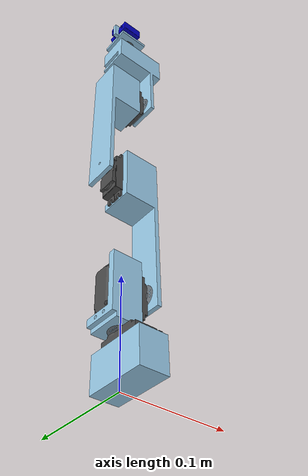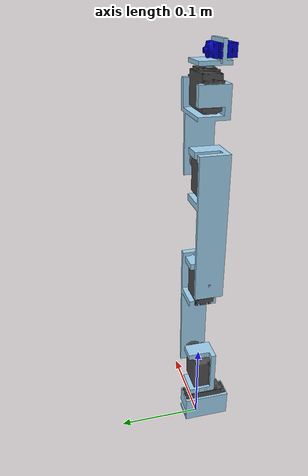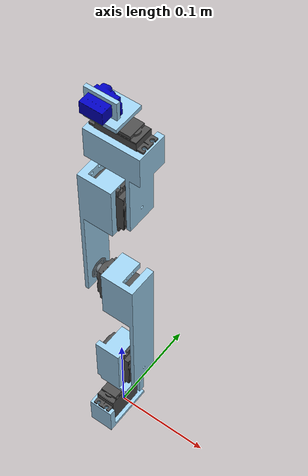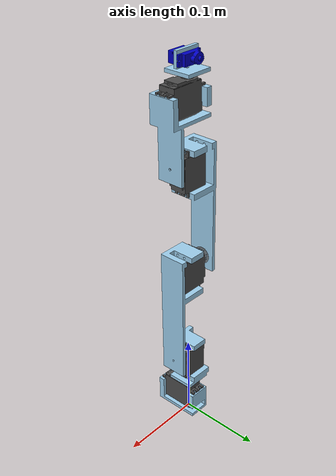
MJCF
<?xml version="1.0" ?>
<!-- Generated using onshape-to-robot -->
<!-- Onshape https://cad.onshape.com/documents/d7eef6374aced10980d655e0/w/a95c1ea2fcec3b2e30db9b5b/e/d4f0ac28893840637e82be16 -->
<mujoco model="arm">
  <compiler angle="radian" meshdir="assets" autolimits="true"/>
  <default>
    <default class="arm">
      <joint frictionloss="0.1" armature="0.005"/>
      <position kp="50" dampratio="1"/>
      <default class="visual">
        <geom type="mesh" contype="0" conaffinity="0" group="2"/>
      </default>
      <default class="collision">
        <geom group="3"/>
      </default>
    </default>
  </default>
  <worldbody>
    <!-- Link base -->
    <body name="base" pos="0 0 0" quat="1 0 0 0" childclass="arm">
      <inertial pos="-0.000680906 -0.0104412 0.0204865" mass="0.0768948" fullinertia="2.65684e-05 1.36374e-05 1.9651e-05 8.1409e-08 -1.53986e-07 -5.00013e-07"/>
      <!-- Part base -->
      <geom type="mesh" class="visual" pos="0 0 0" quat="1 0 0 0" mesh="base" material="base_material"/>
      <geom type="mesh" class="collision" pos="0 0 0" quat="1 0 0 0" mesh="base" material="base_material"/>
      <!-- Part mg996r -->
      <geom type="mesh" class="visual" pos="-0 0.0103491 0.00400596" quat="0.707107 0 0 -0.707107" mesh="mg996r" material="mg996r_material"/>
      <geom type="mesh" class="collision" pos="-0 0.0103491 0.00400596" quat="0.707107 0 0 -0.707107" mesh="mg996r" material="mg996r_material"/>
      <!-- Link seg1 -->
      <body name="seg1" pos="-0 -0 0.044" quat="0 1 0 0">
        <!-- Joint from base to seg1 -->
        <joint axis="0 0 1" name="base" type="hinge" range="-1.5707963267948966 1.5707963267948966"/>
        <inertial pos="-0.00184016 0.00145683 -0.0330241" mass="0.0819233" fullinertia="2.56854e-05 2.94731e-05 1.3297e-05 5.50719e-07 3.43356e-07 4.16475e-07"/>
        <!-- Part mg966r_circular -->
        <geom type="mesh" class="visual" pos="-0 0 -0.00575" quat="0.707107 0.707107 -0 -0" mesh="mg966r_circular" material="mg966r_circular_material"/>
        <geom type="mesh" class="collision" pos="-0 0 -0.00575" quat="0.707107 0.707107 -0 -0" mesh="mg966r_circular" material="mg966r_circular_material"/>
        <!-- Part mg996r_2 -->
        <geom type="mesh" class="visual" pos="-0.019994 0 -0.0557491" quat="0 0.707107 -0 0.707107" mesh="mg996r" material="mg996r_material"/>
        <geom type="mesh" class="collision" pos="-0.019994 0 -0.0557491" quat="0 0.707107 -0 0.707107" mesh="mg996r" material="mg996r_material"/>
        <!-- Part seg1 -->
        <geom type="mesh" class="visual" pos="0 -0 -0.0034" quat="0 1 -0 -0" mesh="seg1" material="seg1_material"/>
        <geom type="mesh" class="collision" pos="0 -0 -0.0034" quat="0 1 -0 -0" mesh="seg1" material="seg1_material"/>
        <!-- Link seg2 -->
        <body name="seg2" pos="0.02 -0 -0.0454" quat="0.5 0.5 -0.5 -0.5">
          <!-- Joint from seg1 to seg2 -->
          <joint axis="0 0 1" name="shoulder" type="hinge" range="-1.5707963267948966 1.5707963267948966"/>
          <inertial pos="-0.00126539 -0.102927 0.011796" mass="0.105249" fullinertia="0.00014364 2.605e-05 0.00013129 -1.87397e-06 2.2095e-08 2.33092e-05"/>
          <!-- Part seg2 -->
          <geom type="mesh" class="visual" pos="-0 -0 -0.0034" quat="0.5 0.5 0.5 -0.5" mesh="seg2" material="seg2_material"/>
          <geom type="mesh" class="collision" pos="-0 -0 -0.0034" quat="0.5 0.5 0.5 -0.5" mesh="seg2" material="seg2_material"/>
          <!-- Part mg966r_circular_2 -->
          <geom type="mesh" class="visual" pos="0 0 -0.00575" quat="0.707107 0.707107 -0 -0" mesh="mg966r_circular" material="mg966r_circular_material"/>
          <geom type="mesh" class="collision" pos="0 0 -0.00575" quat="0.707107 0.707107 -0 -0" mesh="mg966r_circular" material="mg966r_circular_material"/>
          <!-- Part mg996r_3 -->
          <geom type="mesh" class="visual" pos="-0 -0.136349 5.95888e-06" quat="0.707107 -0 -0 0.707107" mesh="mg996r" material="mg996r_material"/>
          <geom type="mesh" class="collision" pos="-0 -0.136349 5.95888e-06" quat="0.707107 -0 -0 0.707107" mesh="mg996r" material="mg996r_material"/>
          <!-- Link seg3 -->
          <body name="seg3" pos="-0 -0.126 0.04" quat="0 0 1 0">
            <!-- Joint from seg2 to seg3 -->
            <joint axis="0 0 1" name="elbow" type="hinge" range="-1.5707963267949037 1.5707963267948895"/>
            <inertial pos="0.00126539 -0.102927 0.011796" mass="0.105249" fullinertia="0.00014364 2.605e-05 0.00013129 1.87397e-06 -2.2095e-08 2.33092e-05"/>
            <!-- Part mg996r_4 -->
            <geom type="mesh" class="visual" pos="-0 -0.136349 5.95888e-06" quat="0.707107 -0 -0 0.707107" mesh="mg996r" material="mg996r_material"/>
            <geom type="mesh" class="collision" pos="-0 -0.136349 5.95888e-06" quat="0.707107 -0 -0 0.707107" mesh="mg996r" material="mg996r_material"/>
            <!-- Part mg966r_circular_3 -->
            <geom type="mesh" class="visual" pos="0 0 -0.00575" quat="0.707107 0.707107 0 -0" mesh="mg966r_circular" material="mg966r_circular_material"/>
            <geom type="mesh" class="collision" pos="0 0 -0.00575" quat="0.707107 0.707107 0 -0" mesh="mg966r_circular" material="mg966r_circular_material"/>
            <!-- Part seg3 -->
            <geom type="mesh" class="visual" pos="-0 -0 -0.0034" quat="0.5 0.5 -0.5 0.5" mesh="seg3" material="seg3_material"/>
            <geom type="mesh" class="collision" pos="-0 -0 -0.0034" quat="0.5 0.5 -0.5 0.5" mesh="seg3" material="seg3_material"/>
            <!-- Link seg4 -->
            <body name="seg4" pos="-0 -0.126 0.04" quat="0 0 1 0">
              <!-- Joint from seg3 to seg4 -->
              <joint axis="0 0 1" name="wrist" type="hinge" range="-1.5707963267948966 1.5707963267948966"/>
              <inertial pos="-0.00124317 -0.0623669 0.00794801" mass="0.0960033" fullinertia="6.0761e-05 2.70603e-05 4.56639e-05 -3.79352e-07 3.77811e-07 7.6514e-06"/>
              <!-- Part mg966r_circular_4 -->
              <geom type="mesh" class="visual" pos="0 0 -0.00575" quat="0.707107 0.707107 0 0" mesh="mg966r_circular" material="mg966r_circular_material"/>
              <geom type="mesh" class="collision" pos="0 0 -0.00575" quat="0.707107 0.707107 0 0" mesh="mg966r_circular" material="mg966r_circular_material"/>
              <!-- Part seg4 -->
              <geom type="mesh" class="visual" pos="-0 -0 -0.0034" quat="0.5 0.5 0.5 -0.5" mesh="seg4" material="seg4_material"/>
              <geom type="mesh" class="collision" pos="-0 -0 -0.0034" quat="0.5 0.5 0.5 -0.5" mesh="seg4" material="seg4_material"/>
              <!-- Part mg996r_5 -->
              <geom type="mesh" class="visual" pos="-0 -0.052006 0.0303491" quat="0.5 0.5 0.5 -0.5" mesh="mg996r" material="mg996r_material"/>
              <geom type="mesh" class="collision" pos="-0 -0.052006 0.0303491" quat="0.5 0.5 0.5 -0.5" mesh="mg996r" material="mg996r_material"/>
              <!-- Link hand -->
              <body name="hand" pos="-0 -0.092 0.02" quat="0.5 -0.5 0.5 0.5">
                <!-- Joint from seg4 to hand -->
                <joint axis="0 0 1" name="twist" type="hinge" range="-1.5707963267948966 1.5707963267948966"/>
                <inertial pos="-0.00126212 0.00138788 -0.00795851" mass="0.00672512" fullinertia="7.14627e-07 9.01745e-07 1.1501e-06 3.9147e-08 -6.9336e-08 8.2461e-08"/>
                <!-- Part sg90_body -->
                <geom type="mesh" class="visual" pos="-0.0051 0.0196 -0.0154" quat="0 -1 0 -0" mesh="sg90_body" material="sg90_body_material"/>
                <geom type="mesh" class="collision" pos="-0.0051 0.0196 -0.0154" quat="0 -1 0 -0" mesh="sg90_body" material="sg90_body_material"/>
                <!-- Part hand -->
                <geom type="mesh" class="visual" pos="0 -0 -0.0034" quat="0 0.707107 0.707107 0" mesh="hand" material="hand_material"/>
                <geom type="mesh" class="collision" pos="0 -0 -0.0034" quat="0 0.707107 0.707107 0" mesh="hand" material="hand_material"/>
                <!-- Part mg966r_circular_5 -->
                <geom type="mesh" class="visual" pos="-0 -0 -0.00575" quat="0.707107 0.707107 -0 -0" mesh="mg966r_circular" material="mg966r_circular_material"/>
                <geom type="mesh" class="collision" pos="-0 -0 -0.00575" quat="0.707107 0.707107 -0 -0" mesh="mg966r_circular" material="mg966r_circular_material"/>
              </body>
            </body>
          </body>
        </body>
      </body>
    </body>
  </worldbody>
  <asset>
    <mesh file="sg90_body.stl"/>
    <mesh file="hand.stl"/>
    <mesh file="seg1.stl"/>
    <mesh file="mg996r.stl"/>
    <mesh file="seg4.stl"/>
    <mesh file="seg2.stl"/>
    <mesh file="seg3.stl"/>
    <mesh file="mg966r_circular.stl"/>
    <mesh file="base.stl"/>
    <material name="base_material" rgba="0.615686 0.811765 0.929412 1"/>
    <material name="mg996r_material" rgba="0.301961 0.301961 0.301961 1"/>
    <material name="mg966r_circular_material" rgba="0.439216 0.47451 0.501961 1"/>
    <material name="seg1_material" rgba="0.615686 0.811765 0.929412 1"/>
    <material name="seg2_material" rgba="0.615686 0.811765 0.929412 1"/>
    <material name="seg3_material" rgba="0.615686 0.811765 0.929412 1"/>
    <material name="seg4_material" rgba="0.615686 0.811765 0.929412 1"/>
    <material name="sg90_body_material" rgba="0 0 0.752941 1"/>
    <material name="hand_material" rgba="0.615686 0.811765 0.929412 1"/>
  </asset>
  <actuator>
    <position class="arm" name="base" joint="base" inheritrange="1"/>
    <position class="arm" name="shoulder" joint="shoulder" inheritrange="1"/>
    <position class="arm" name="elbow" joint="elbow" inheritrange="1"/>
    <position class="arm" name="wrist" joint="wrist" inheritrange="1"/>
    <position class="arm" name="twist" joint="twist" inheritrange="1"/>
  </actuator>
  <equality/>
</mujoco>
